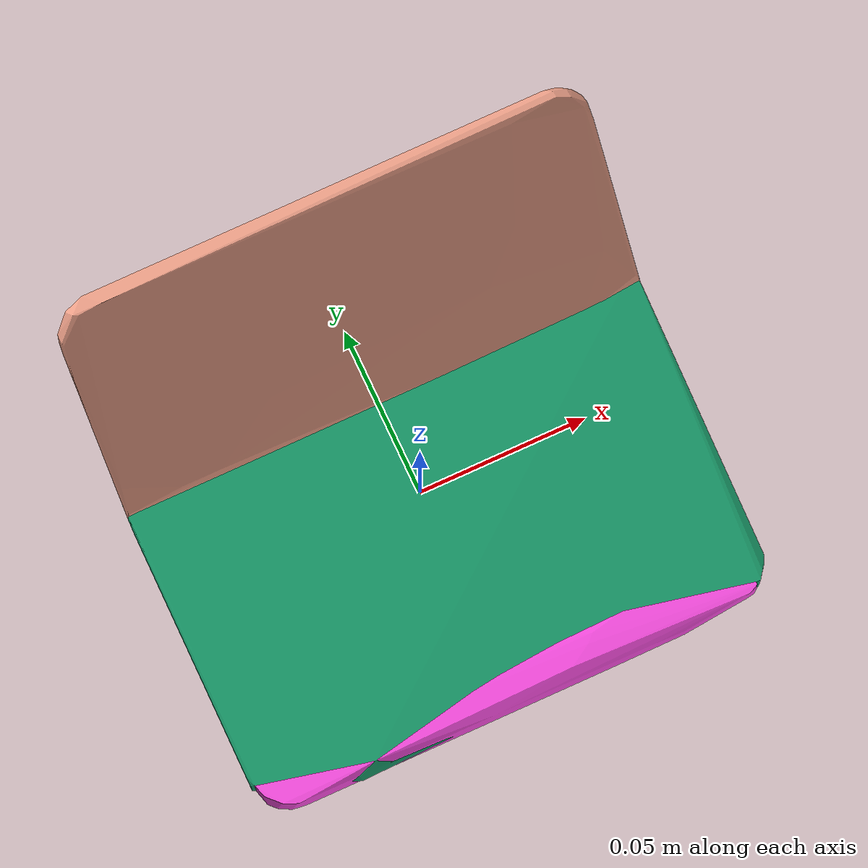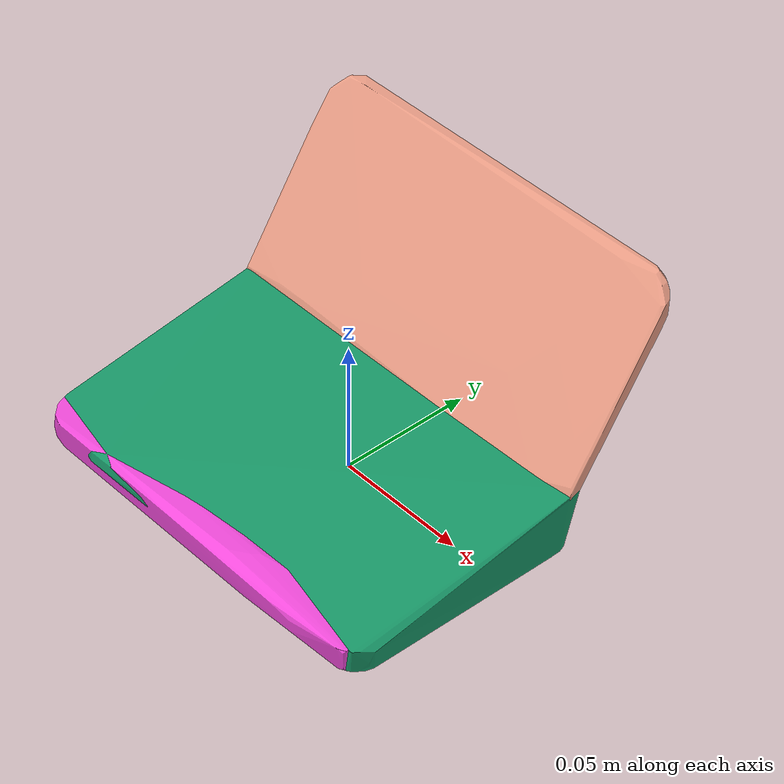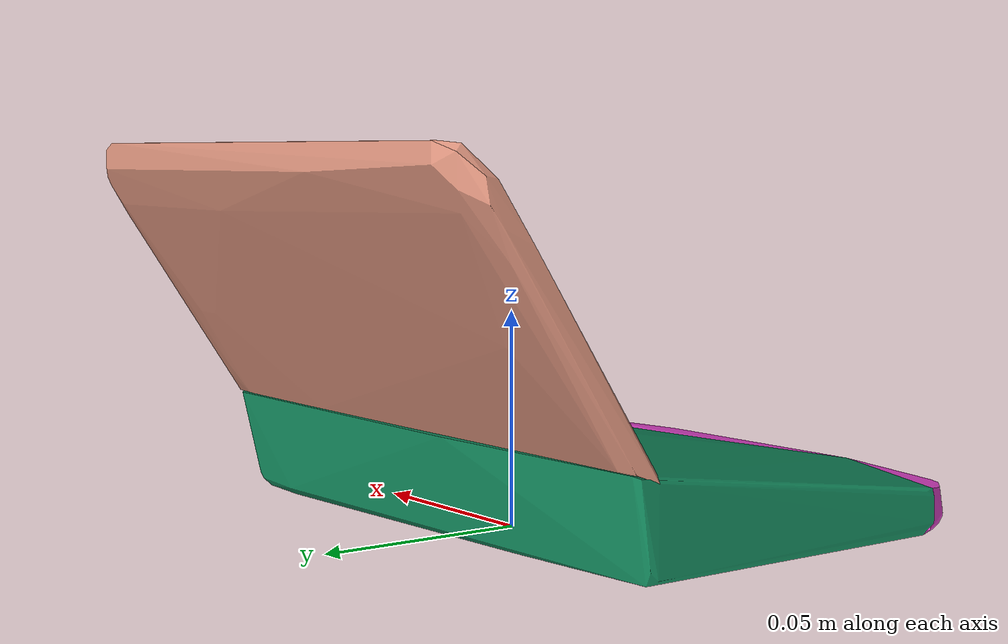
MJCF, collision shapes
<mujoco model="model">
  <asset>
    <texture type="2d" name="texture" file="texture.png"/>
    <material name="material_0" texture="texture" specular="0.29313133333333335" shininess="0.000200509"/>
    <mesh name="model_0" file="model_0.obj"/>
    <mesh name="model_collision_0" file="model_collision_0.obj"/>
    <mesh name="model_collision_1" file="model_collision_1.obj"/>
    <mesh name="model_collision_2" file="model_collision_2.obj"/>
  </asset>
  <worldbody>
    <body name="model">
      <geom material="material_0" mesh="model_0" type="mesh" contype="0" conaffinity="0" group="2"/>
      <geom mesh="model_collision_0" rgba="0.08730148686581662 0.5838080858689522 0.3977514924534775 1" type="mesh" group="3"/>
      <geom mesh="model_collision_1" rgba="0.9146608574423902 0.614481186859825 0.5225245593286709 1" type="mesh" group="3"/>
      <geom mesh="model_collision_2" rgba="0.9381692434139915 0.2856802432583526 0.8485933962250535 1" type="mesh" group="3"/>
    </body>
  </worldbody>
</mujoco>
